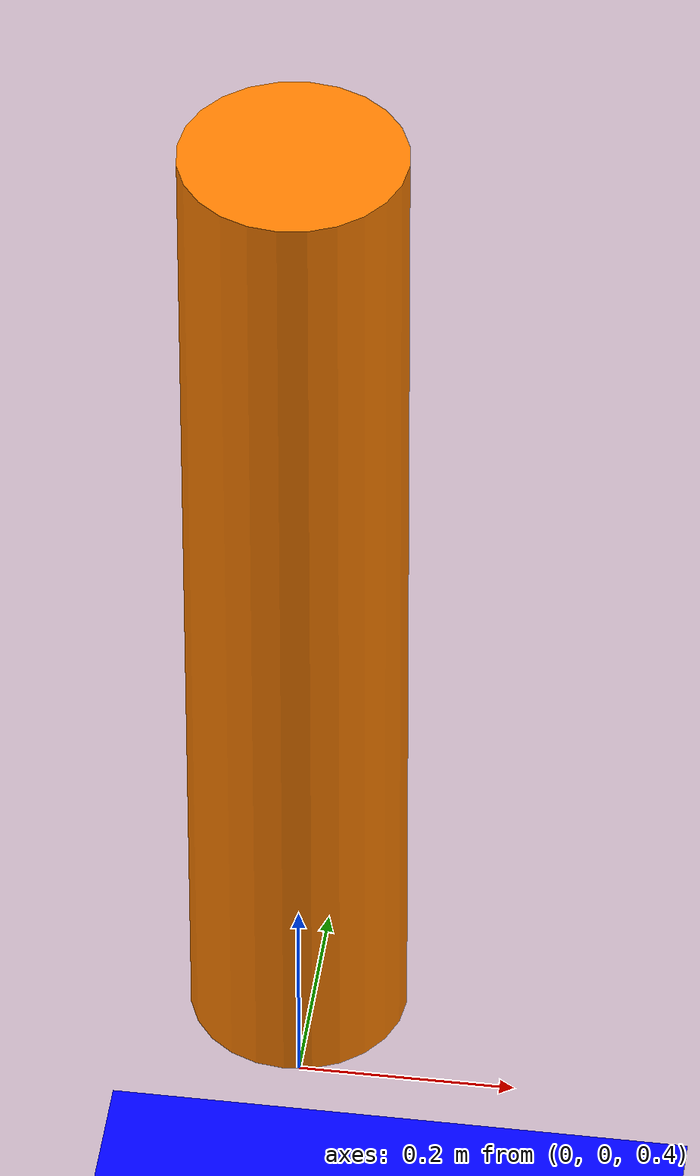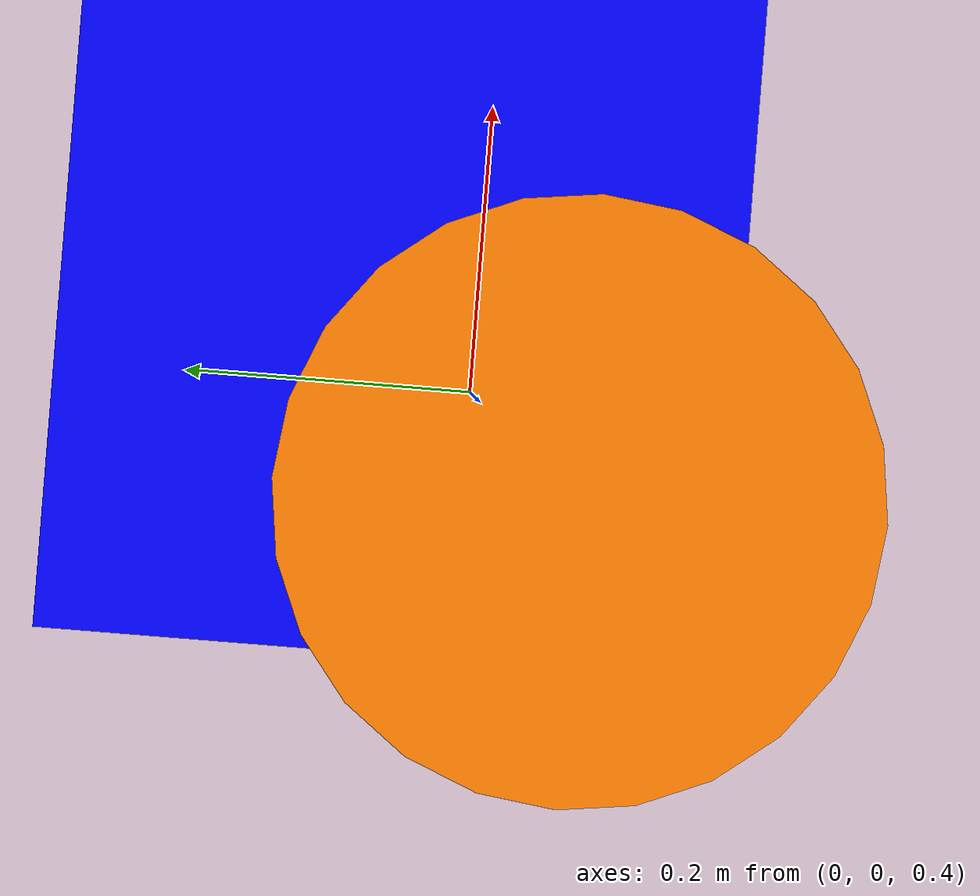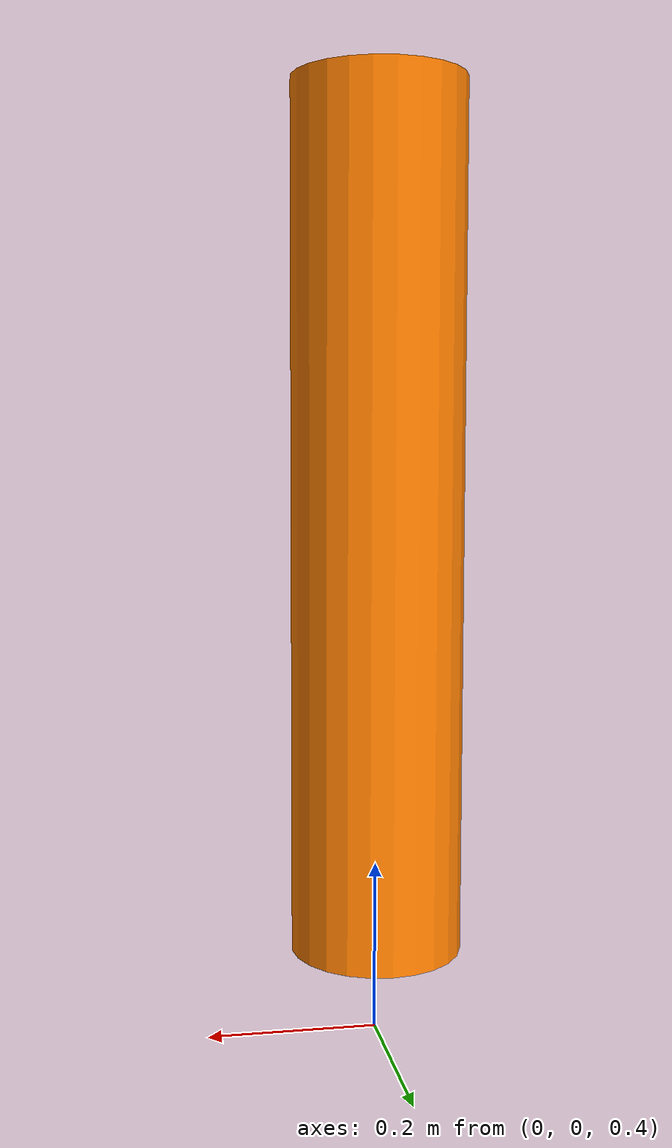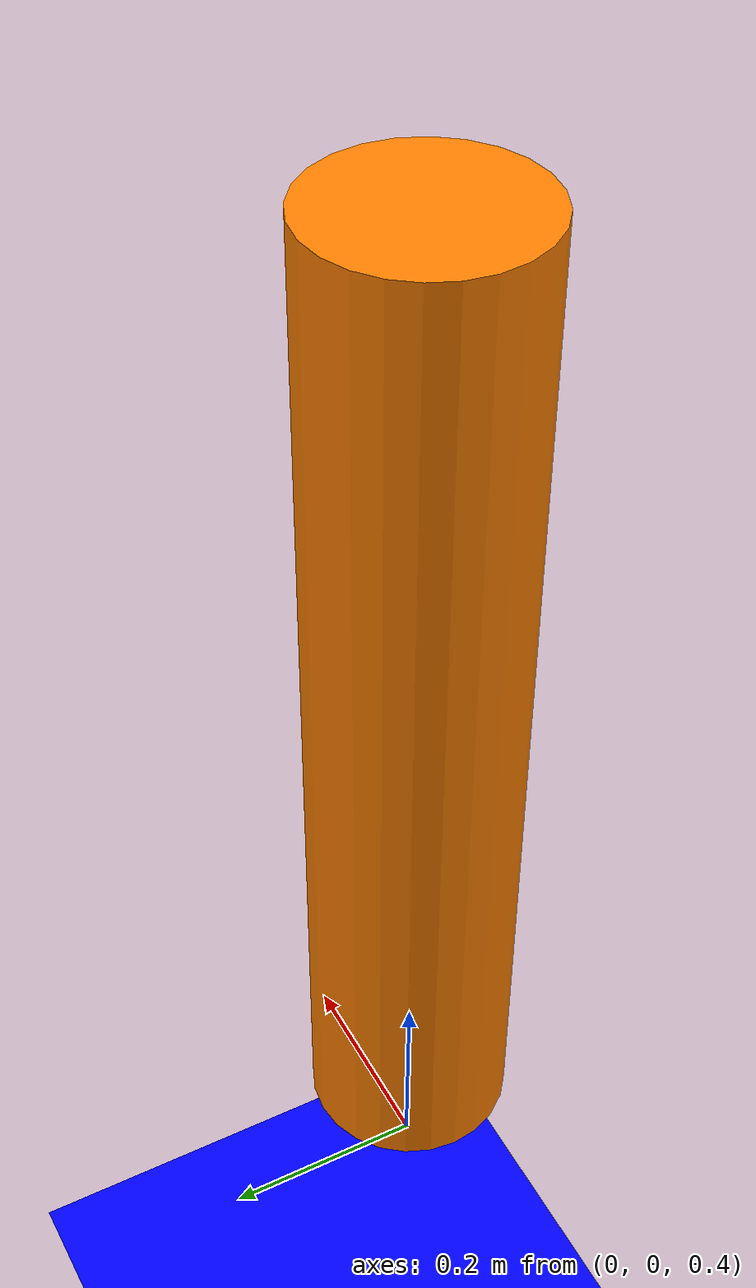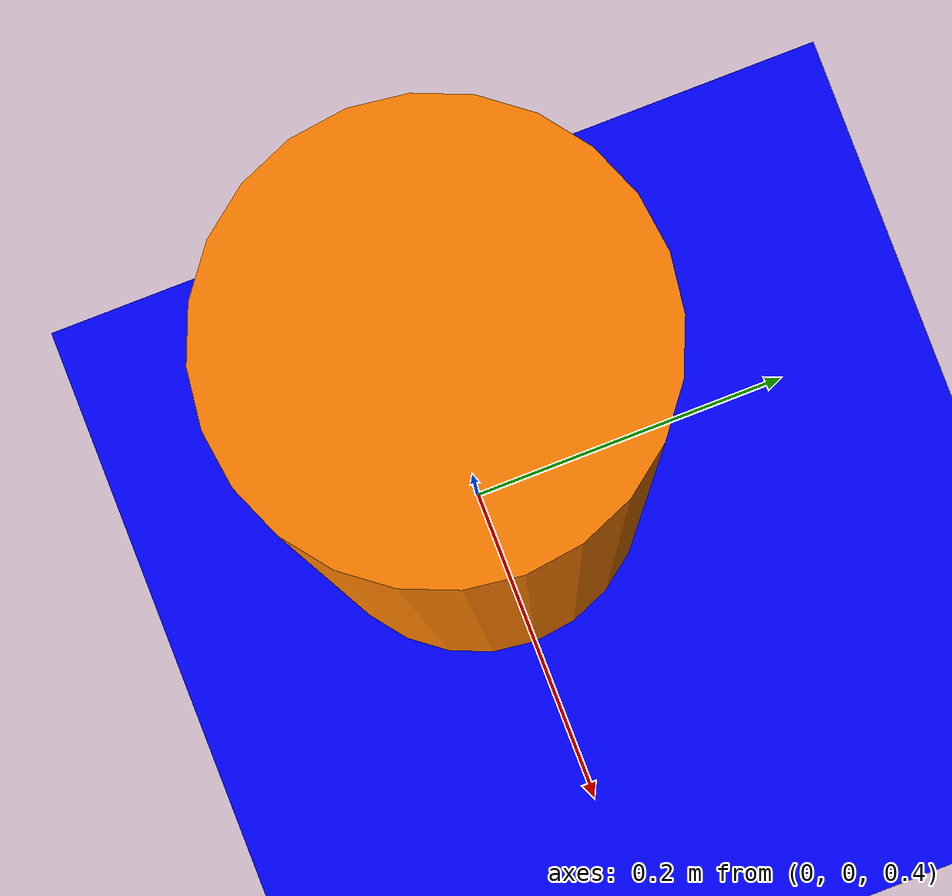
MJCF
<mujoco model="pendulum">

<worldbody>
    <light diffuse=".5 .5 .5" pos="0 0 3" dir="0 0 -1" />

    <geom type="plane" size="1 1 0.1" rgba="0 0 1 1" />

    <body pos="0 0 1" euler="0 0 0">
        <joint name="pin" type="hinge" axis="0 1 0" pos="0 0 0.5" frictionloss="3"/>
        <geom type="cylinder" size="0.1 0.5" rgba="1 0.5 0 1" mass="1"/>
    </body>

</worldbody>

<actuator>
    <motor joint="pin" name="torque" gear="1" ctrllimited="true" ctrlrange="-100 100" />
    <position name="pos_servo" joint="pin" kp="10" />
    <velocity name="vel_servo" joint="pin" kv="1" />
    <muscle name="mymuscle" tendon="mytendon" />
</actuator>

</mujoco>
